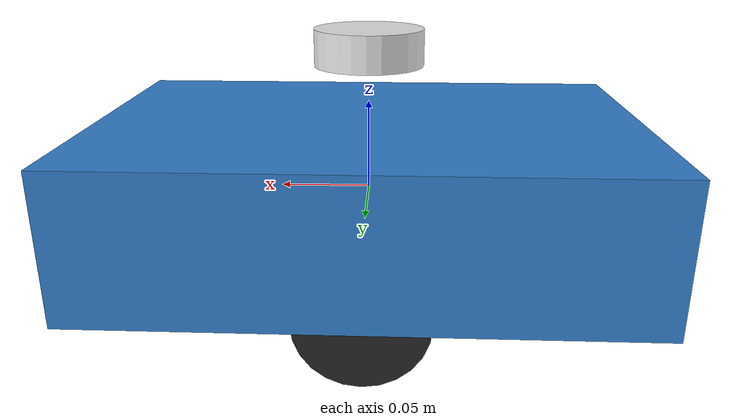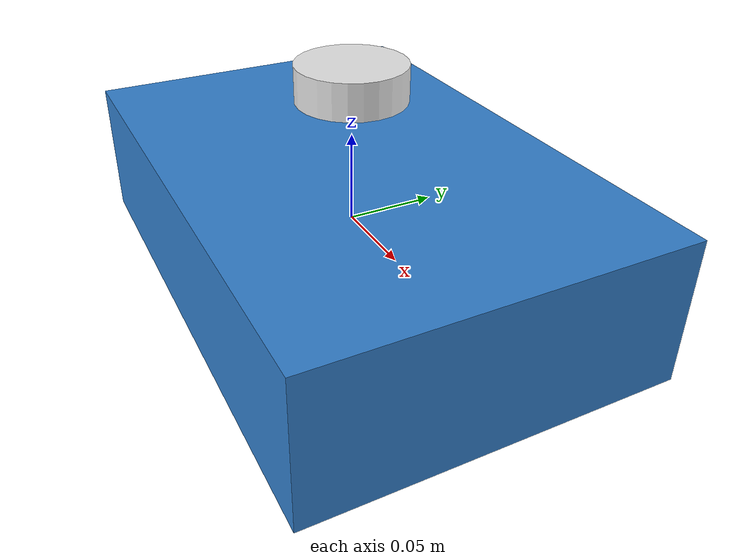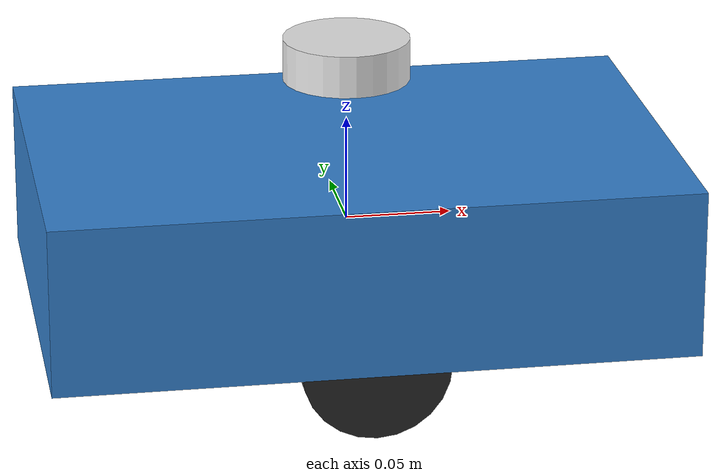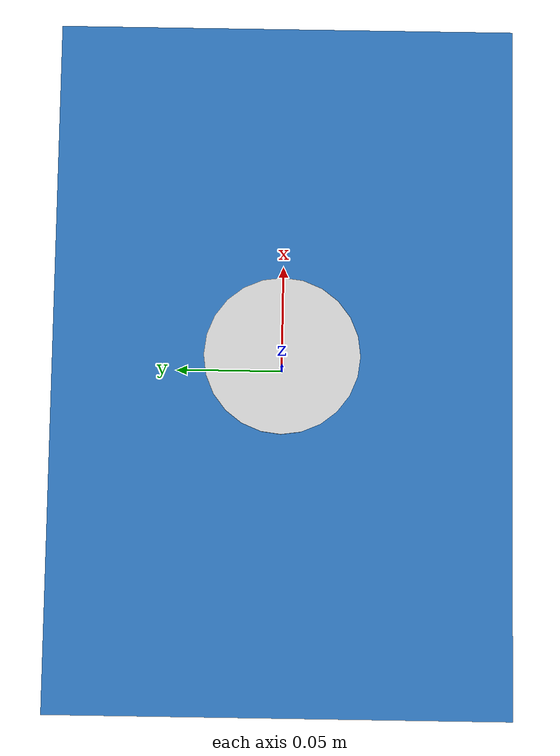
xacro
<?xml version="1.0"?>
<robot name="walk_talk_run_robot" xmlns:xacro="http://www.ros.org/wiki/xacro">

  <!-- ========== Properties ========== -->
  <xacro:property name="base_length" value="0.3"/>
  <xacro:property name="base_width"  value="0.2"/>
  <xacro:property name="base_height" value="0.08"/>
  <xacro:property name="wheel_radius" value="0.035"/>
  <xacro:property name="wheel_width"  value="0.02"/>
  <xacro:property name="wheel_separation" value="0.16"/>
  <xacro:property name="wheel_y_offset" value="${wheel_separation / 2.0}"/>
  <xacro:property name="caster_x_offset" value="-0.1"/>
  <xacro:property name="lidar_z" value="${base_height / 2.0 + 0.04}"/>

  <!-- ========== Materials ========== -->
  <material name="base_color">
    <color rgba="0.2 0.5 0.8 1.0"/>
  </material>
  <material name="wheel_color">
    <color rgba="0.15 0.15 0.15 1.0"/>
  </material>
  <material name="lidar_color">
    <color rgba="0.9 0.9 0.9 1.0"/>
  </material>

  <!-- ========== Base Link ========== -->
  <link name="base_link">
    <visual>
      <geometry>
        <box size="${base_length} ${base_width} ${base_height}"/>
      </geometry>
      <material name="base_color"/>
    </visual>
    <collision>
      <geometry>
        <box size="${base_length} ${base_width} ${base_height}"/>
      </geometry>
    </collision>
    <inertial>
      <mass value="5.0"/>
      <inertia ixx="0.01" ixy="0.0" ixz="0.0" iyy="0.01" iyz="0.0" izz="0.01"/>
    </inertial>
  </link>

  <!-- ========== Left Wheel ========== -->
  <joint name="left_wheel_joint" type="continuous">
    <parent link="base_link"/>
    <child link="left_wheel"/>
    <origin xyz="0.0 ${wheel_y_offset} -${base_height/2.0}" rpy="${pi/2.0} 0.0 0.0"/>
    <axis xyz="0 0 1"/>
  </joint>
  <link name="left_wheel">
    <visual>
      <geometry>
        <cylinder radius="${wheel_radius}" length="${wheel_width}"/>
      </geometry>
      <material name="wheel_color"/>
    </visual>
    <collision>
      <geometry>
        <cylinder radius="${wheel_radius}" length="${wheel_width}"/>
      </geometry>
    </collision>
    <inertial>
      <mass value="0.5"/>
      <inertia ixx="0.0001" ixy="0.0" ixz="0.0" iyy="0.0001" iyz="0.0" izz="0.0001"/>
    </inertial>
  </link>

  <!-- ========== Right Wheel ========== -->
  <joint name="right_wheel_joint" type="continuous">
    <parent link="base_link"/>
    <child link="right_wheel"/>
    <origin xyz="0.0 -${wheel_y_offset} -${base_height/2.0}" rpy="${-pi/2.0} 0.0 0.0"/>
    <axis xyz="0 0 1"/>
  </joint>
  <link name="right_wheel">
    <visual>
      <geometry>
        <cylinder radius="${wheel_radius}" length="${wheel_width}"/>
      </geometry>
      <material name="wheel_color"/>
    </visual>
    <collision>
      <geometry>
        <cylinder radius="${wheel_radius}" length="${wheel_width}"/>
      </geometry>
    </collision>
    <inertial>
      <mass value="0.5"/>
      <inertia ixx="0.0001" ixy="0.0" ixz="0.0" iyy="0.0001" iyz="0.0" izz="0.0001"/>
    </inertial>
  </link>

  <!-- ========== Caster Wheel (front) ========== -->
  <joint name="caster_joint" type="fixed">
    <parent link="base_link"/>
    <child link="caster"/>
    <origin xyz="${base_length/2.0 - 0.03} 0.0 -${base_height/2.0}"/>
  </joint>
  <link name="caster">
    <visual>
      <geometry>
        <sphere radius="0.015"/>
      </geometry>
      <material name="wheel_color"/>
    </visual>
    <collision>
      <geometry>
        <sphere radius="0.015"/>
      </geometry>
    </collision>
    <inertial>
      <mass value="0.1"/>
      <inertia ixx="0.00001" ixy="0.0" ixz="0.0" iyy="0.00001" iyz="0.0" izz="0.00001"/>
    </inertial>
  </link>

  <!-- ========== LiDAR ========== -->
  <joint name="lidar_joint" type="fixed">
    <parent link="base_link"/>
    <child link="lidar_link"/>
    <origin xyz="0.0 0.0 ${lidar_z}"/>
  </joint>
  <link name="lidar_link">
    <visual>
      <geometry>
        <cylinder radius="0.03" length="0.02"/>
      </geometry>
      <material name="lidar_color"/>
    </visual>
    <collision>
      <geometry>
        <cylinder radius="0.03" length="0.02"/>
      </geometry>
    </collision>
    <inertial>
      <mass value="0.1"/>
      <inertia ixx="0.00001" ixy="0.0" ixz="0.0" iyy="0.00001" iyz="0.0" izz="0.00001"/>
    </inertial>
  </link>

  <!-- ========== Gazebo Plugins ========== -->
  <gazebo reference="base_link">
    <material>Gazebo/Blue</material>
  </gazebo>
  <gazebo reference="left_wheel">
    <material>Gazebo/DarkGrey</material>
  </gazebo>
  <gazebo reference="right_wheel">
    <material>Gazebo/DarkGrey</material>
  </gazebo>
  <gazebo reference="lidar_link">
    <material>Gazebo/White</material>
  </gazebo>

  <!-- Diff Drive -->
  <gazebo>
    <plugin filename="gz-sim-diff-drive-system" name="gz::sim::systems::DiffDrive">
      <left_joint>left_wheel_joint</left_joint>
      <right_joint>right_wheel_joint</right_joint>
      <wheel_separation>${wheel_separation}</wheel_separation>
      <wheel_radius>${wheel_radius}</wheel_radius>
      <topic>/cmd_vel</topic>
      <odom_topic>/odom</odom_topic>
      <frame_id>odom</frame_id>
      <child_frame_id>base_link</child_frame_id>
    </plugin>
  </gazebo>

  <!-- Lidar -->
  <gazebo reference="lidar_link">
    <sensor name="lidar" type="gpu_lidar">
      <always_on>true</always_on>
      <update_rate>10</update_rate>
      <visualize>true</visualize>
      <topic>/scan</topic>
      <gz_frame_id>lidar_link</gz_frame_id>
      <ray>
        <scan>
          <horizontal>
            <samples>360</samples>
            <resolution>1</resolution>
            <min_angle>0</min_angle>
            <max_angle>6.283185307179586</max_angle>
          </horizontal>
          <vertical>
            <samples>1</samples>
            <min_angle>0</min_angle>
            <max_angle>0</max_angle>
          </vertical>
        </scan>
        <range>
          <min>0.1</min>
          <max>10.0</max>
          <resolution>0.01</resolution>
        </range>
      </ray>
    </sensor>
  </gazebo>

</robot>
